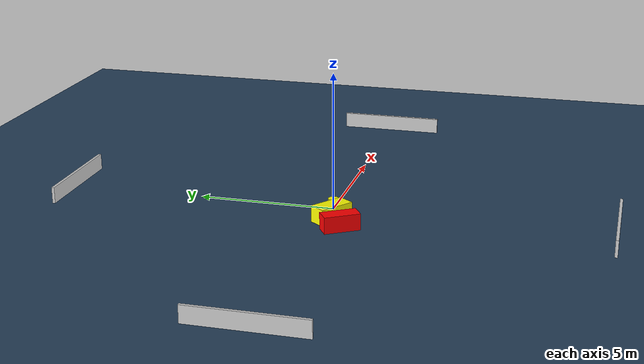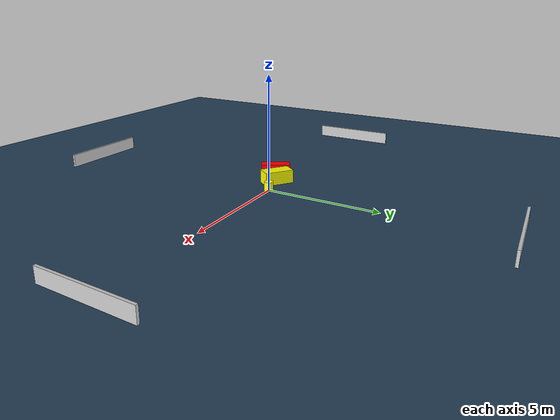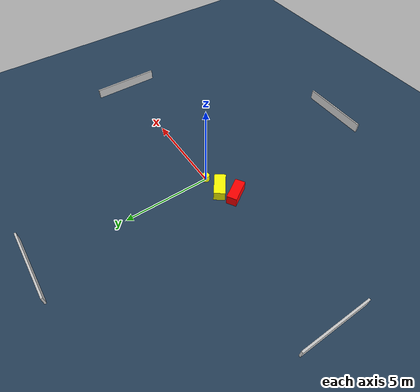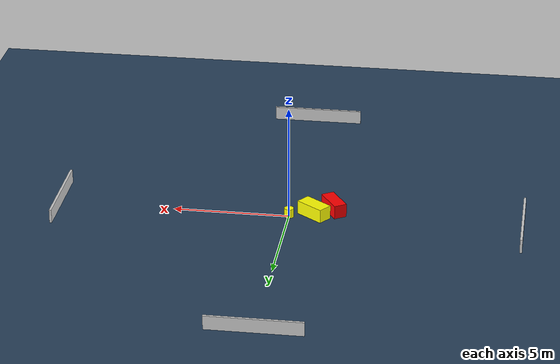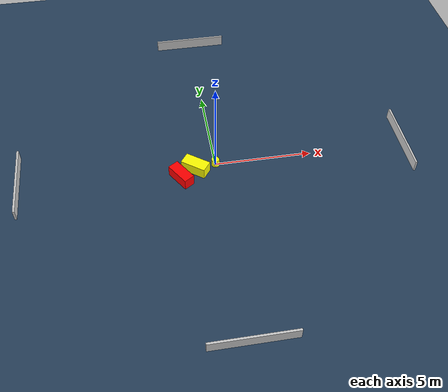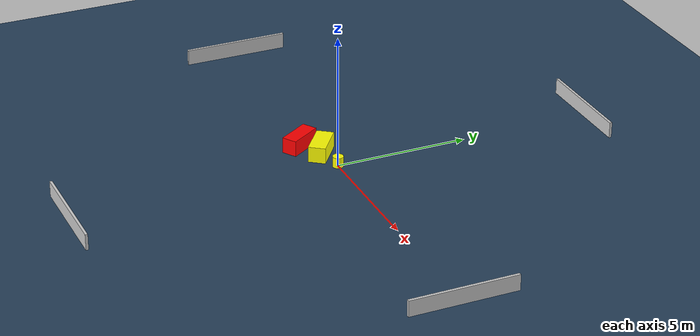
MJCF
<?xml version="1.0" ?>
<mujoco model="generated_environment">
  <option timestep="0.01" integrator="RK4" cone="elliptic"/>
  <default>
    <geom density="1"/>
  </default>
  <asset>
    <texture builtin="gradient" height="3072" name="skybox" rgb1="0.3 0.5 0.7" rgb2="0 0 0" type="skybox" width="512"/>
    <texture builtin="checker" height="300" name="groundplane" rgb1="0.2 0.3 0.4" rgb2="0.1 0.2 0.3" type="2d" width="300"/>
    <material name="groundplane" reflectance="0.2" texrepeat="5 5" texture="groundplane"/>
  </asset>
  <worldbody>
    <light dir="0 0 -1" directional="true" pos="0 0 1.5"/>
    <geom condim="3" friction="0.5 0.005 0.001" material="groundplane" name="floor" pos="0 0 0" size="0 0 0.05" type="plane"/>
    <body name="walls">
      <geom name="wall_1" condim="4" pos="-10.0 0.0 0.3" rgba="0.800000011920929 0.800000011920929 0.800000011920929 1.0" size="0.05 2.0 0.3" type="box"/>
      <geom name="wall_2" condim="4" pos="10.0 0.0 0.3" rgba="0.800000011920929 0.800000011920929 0.800000011920929 1.0" size="0.05 2.0 0.3" type="box"/>
      <geom name="wall_3" condim="4" pos="0.0 -10.0 0.3" rgba="0.800000011920929 0.800000011920929 0.800000011920929 1.0" size="2.0 0.05 0.3" type="box"/>
      <geom name="wall_4" condim="4" pos="0.0 10.0 0.3" rgba="0.800000011920929 0.800000011920929 0.800000011920929 1.0" size="2.0 0.05 0.3" type="box"/>
    </body>
    <body name="robot">
      <joint name="joint_x" type="slide" pos="0 0 0" axis="1 0 0"/>
      <joint name="joint_y" type="slide" pos="0 0 0" axis="0 1 0"/>
      <geom name="robot" type="cylinder" pos="0.0 0.0 0.2" size="0.2 0.2 0.0" mass="5.0" friction="1.0 0.005 0.0001" condim="4" rgba="1.0 1.0 0.0 1.0"/>
    </body>
    <body name="obstacle_1_movable">
      <geom name="obstacle_1_movable" condim="4" pos="-1.0580993269790337 -0.19949780998042943 0.3" euler="0 0 323.4270936852951" friction="0.0 0.005 0.001" rgba="1.0 1.0 0.0 1.0" size="0.6639465991965214 0.3185788648325302 0.3" type="box" mass="0.1"/>
      <joint type="free"/>
    </body>
    <body name="obstacle_2_static">
      <geom name="obstacle_2_static" condim="4" pos="-1.8536690103900617 -0.7088690290425291 0.3" euler="0 0 32.41385169885552" friction="0.0 0.005 0.001" rgba="1.0 0.0 0.0 1.0" size="0.28511550743123915 0.6529279494731348 0.3" type="box"/>
    </body>
  </worldbody>
  <actuator>
    <motor name="actuator_x" joint="joint_x" gear="1" ctrlrange="-1 1"/>
    <motor name="actuator_y" joint="joint_y" gear="1" ctrlrange="-1 1"/>
  </actuator>
</mujoco>
